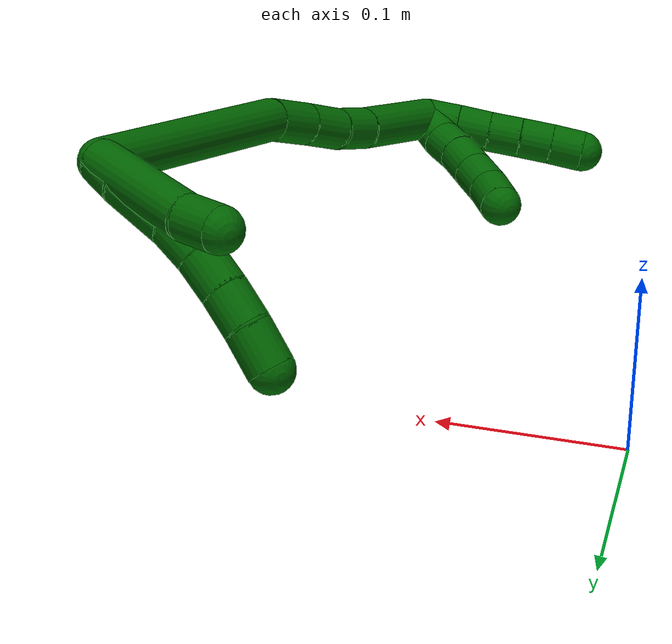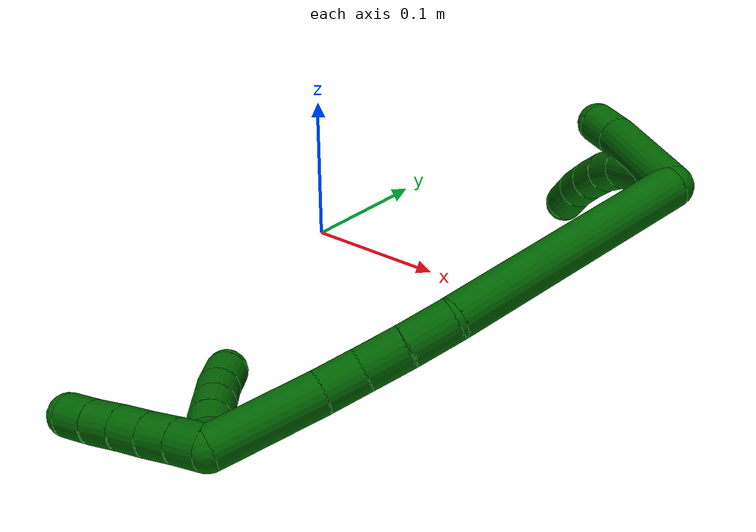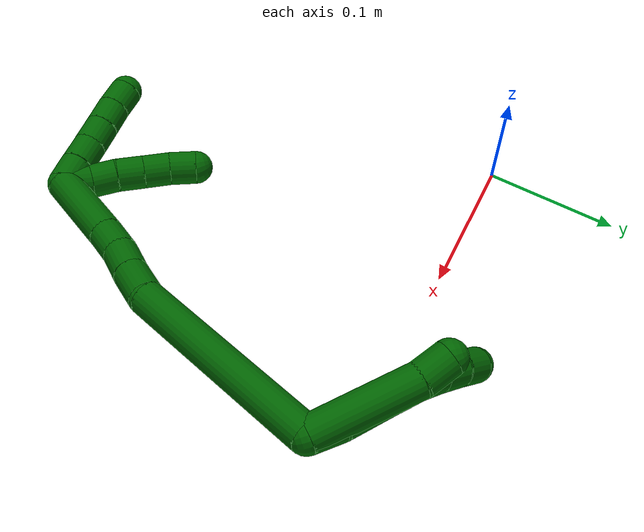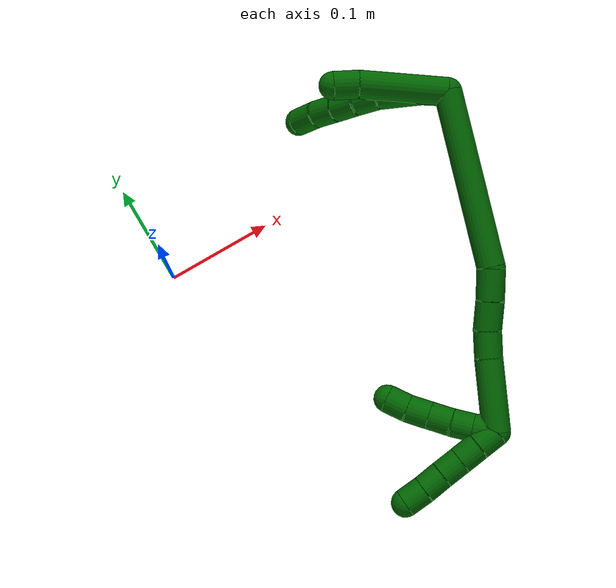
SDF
<sdf version="1.7">
 <world name="default">
  <model name="6">
   <static>0</static>
   <link name="6">
    <collision name="collision-cylinder-e_1_2_8">
     <pose>0.002192 -0.001929 -0.010778 2.96446 0.197608 1.68062</pose>
     <geometry><cylinder><radius>0.0125</radius><length>0.022332</length></cylinder></geometry>
     <surface>
      <friction><ode><mu>1.16</mu><mu2>1.16</mu2><slip1>0</slip1><slip2>0</slip2></ode></friction>
      <contact><ode><kp>1e+06</kp><kd>1</kd><max_vel>0</max_vel><min_depth>0.001</min_depth></ode></contact>
     </surface>
    </collision>
    <visual name="visual-cylinder-e_1_2_8">
     <pose>0.002192 -0.001929 -0.010778 2.96446 0.197608 1.68062</pose>
     <geometry><cylinder><radius>0.0125</radius><length>0.022332</length></cylinder></geometry>
     <material><ambient>0 0.392157 0.003922 1</ambient></material>
    </visual>
    <collision name="collision-cylinder-e_2_8_9">
     <pose>0.008478 -0.010081 -0.039435 2.80667 0.212961 1.12764</pose>
     <geometry><cylinder><radius>0.0125</radius><length>0.038738</length></cylinder></geometry>
     <surface>
      <friction><ode><mu>1.16</mu><mu2>1.16</mu2><slip1>0</slip1><slip2>0</slip2></ode></friction>
      <contact><ode><kp>1e+06</kp><kd>1</kd><max_vel>0</max_vel><min_depth>0.001</min_depth></ode></contact>
     </surface>
    </collision>
    <visual name="visual-cylinder-e_2_8_9">
     <pose>0.008478 -0.010081 -0.039435 2.80667 0.212961 1.12764</pose>
     <geometry><cylinder><radius>0.0125</radius><length>0.038738</length></cylinder></geometry>
     <material><ambient>0 0.392157 0.003922 1</ambient></material>
    </visual>
    <collision name="collision-cylinder-e_3_9_10">
     <pose>0.01704 -0.020843 -0.06595 2.65767 0.42945 1.44744</pose>
     <geometry><cylinder><radius>0.0125</radius><length>0.021461</length></cylinder></geometry>
     <surface>
      <friction><ode><mu>1.16</mu><mu2>1.16</mu2><slip1>0</slip1><slip2>0</slip2></ode></friction>
      <contact><ode><kp>1e+06</kp><kd>1</kd><max_vel>0</max_vel><min_depth>0.001</min_depth></ode></contact>
     </surface>
    </collision>
    <visual name="visual-cylinder-e_3_9_10">
     <pose>0.01704 -0.020843 -0.06595 2.65767 0.42945 1.44744</pose>
     <geometry><cylinder><radius>0.0125</radius><length>0.021461</length></cylinder></geometry>
     <material><ambient>0 0.392157 0.003922 1</ambient></material>
    </visual>
    <collision name="collision-cylinder-e_4_10_11">
     <pose>0.027418 -0.029813 -0.082763 2.64501 0.566129 1.70781</pose>
     <geometry><cylinder><radius>0.0125</radius><length>0.022039</length></cylinder></geometry>
     <surface>
      <friction><ode><mu>1.16</mu><mu2>1.16</mu2><slip1>0</slip1><slip2>0</slip2></ode></friction>
      <contact><ode><kp>1e+06</kp><kd>1</kd><max_vel>0</max_vel><min_depth>0.001</min_depth></ode></contact>
     </surface>
    </collision>
    <visual name="visual-cylinder-e_4_10_11">
     <pose>0.027418 -0.029813 -0.082763 2.64501 0.566129 1.70781</pose>
     <geometry><cylinder><radius>0.0125</radius><length>0.022039</length></cylinder></geometry>
     <material><ambient>0 0.392157 0.003922 1</ambient></material>
    </visual>
    <collision name="collision-cylinder-e_5_11_12">
     <pose>0.039621 -0.038295 -0.098774 2.66436 0.619707 1.84215</pose>
     <geometry><cylinder><radius>0.0125</radius><length>0.021668</length></cylinder></geometry>
     <surface>
      <friction><ode><mu>1.16</mu><mu2>1.16</mu2><slip1>0</slip1><slip2>0</slip2></ode></friction>
      <contact><ode><kp>1e+06</kp><kd>1</kd><max_vel>0</max_vel><min_depth>0.001</min_depth></ode></contact>
     </surface>
    </collision>
    <visual name="visual-cylinder-e_5_11_12">
     <pose>0.039621 -0.038295 -0.098774 2.66436 0.619707 1.84215</pose>
     <geometry><cylinder><radius>0.0125</radius><length>0.021668</length></cylinder></geometry>
     <material><ambient>0 0.392157 0.003922 1</ambient></material>
    </visual>
    <collision name="collision-cylinder-e_6_12_6">
     <pose>0.053837 -0.047161 -0.114036 2.56644 0.730117 1.82436</pose>
     <geometry><cylinder><radius>0.0125</radius><length>0.023761</length></cylinder></geometry>
     <surface>
      <friction><ode><mu>1.16</mu><mu2>1.16</mu2><slip1>0</slip1><slip2>0</slip2></ode></friction>
      <contact><ode><kp>1e+06</kp><kd>1</kd><max_vel>0</max_vel><min_depth>0.001</min_depth></ode></contact>
     </surface>
    </collision>
    <visual name="visual-cylinder-e_6_12_6">
     <pose>0.053837 -0.047161 -0.114036 2.56644 0.730117 1.82436</pose>
     <geometry><cylinder><radius>0.0125</radius><length>0.023761</length></cylinder></geometry>
     <material><ambient>0 0.392157 0.003922 1</ambient></material>
    </visual>
    <collision name="collision-cylinder-e_1_2_13">
     <pose>0.001005 -0.006217 -0.038037 2.97958 0.026081 0.31856</pose>
     <geometry><cylinder><radius>0.0125</radius><length>0.077109</length></cylinder></geometry>
     <surface>
      <friction><ode><mu>1.16</mu><mu2>1.16</mu2><slip1>0</slip1><slip2>0</slip2></ode></friction>
      <contact><ode><kp>1e+06</kp><kd>1</kd><max_vel>0</max_vel><min_depth>0.001</min_depth></ode></contact>
     </surface>
    </collision>
    <visual name="visual-cylinder-e_1_2_13">
     <pose>0.001005 -0.006217 -0.038037 2.97958 0.026081 0.31856</pose>
     <geometry><cylinder><radius>0.0125</radius><length>0.077109</length></cylinder></geometry>
     <material><ambient>0 0.392157 0.003922 1</ambient></material>
    </visual>
    <collision name="collision-cylinder-e_2_13_5">
     <pose>0.000959 -0.015915 -0.086926 2.83122 -0.091989 -0.572278</pose>
     <geometry><cylinder><radius>0.0125</radius><length>0.022891</length></cylinder></geometry>
     <surface>
      <friction><ode><mu>1.16</mu><mu2>1.16</mu2><slip1>0</slip1><slip2>0</slip2></ode></friction>
      <contact><ode><kp>1e+06</kp><kd>1</kd><max_vel>0</max_vel><min_depth>0.001</min_depth></ode></contact>
     </surface>
    </collision>
    <visual name="visual-cylinder-e_2_13_5">
     <pose>0.000959 -0.015915 -0.086926 2.83122 -0.091989 -0.572278</pose>
     <geometry><cylinder><radius>0.0125</radius><length>0.022891</length></cylinder></geometry>
     <material><ambient>0 0.392157 0.003922 1</ambient></material>
    </visual>
    <collision name="collision-cylinder-e_1_2_14">
     <pose>-0.00672 -0.068985 0.036414 1.08512 -0.085939 -0.051834</pose>
     <geometry><cylinder><radius>0.0125</radius><length>0.15659</length></cylinder></geometry>
     <surface>
      <friction><ode><mu>1.16</mu><mu2>1.16</mu2><slip1>0</slip1><slip2>0</slip2></ode></friction>
      <contact><ode><kp>1e+06</kp><kd>1</kd><max_vel>0</max_vel><min_depth>0.001</min_depth></ode></contact>
     </surface>
    </collision>
    <visual name="visual-cylinder-e_1_2_14">
     <pose>-0.00672 -0.068985 0.036414 1.08512 -0.085939 -0.051834</pose>
     <geometry><cylinder><radius>0.0125</radius><length>0.15659</length></cylinder></geometry>
     <material><ambient>0 0.392157 0.003922 1</ambient></material>
    </visual>
    <collision name="collision-cylinder-e_2_14_15">
     <pose>-0.012488 -0.151863 0.076179 1.33411 0.066571 0.05243</pose>
     <geometry><cylinder><radius>0.0125</radius><length>0.028644</length></cylinder></geometry>
     <surface>
      <friction><ode><mu>1.16</mu><mu2>1.16</mu2><slip1>0</slip1><slip2>0</slip2></ode></friction>
      <contact><ode><kp>1e+06</kp><kd>1</kd><max_vel>0</max_vel><min_depth>0.001</min_depth></ode></contact>
     </surface>
    </collision>
    <visual name="visual-cylinder-e_2_14_15">
     <pose>-0.012488 -0.151863 0.076179 1.33411 0.066571 0.05243</pose>
     <geometry><cylinder><radius>0.0125</radius><length>0.028644</length></cylinder></geometry>
     <material><ambient>0 0.392157 0.003922 1</ambient></material>
    </visual>
    <collision name="collision-cylinder-e_3_15_16">
     <pose>-0.010522 -0.178591 0.081797 1.396 0.077561 0.065074</pose>
     <geometry><cylinder><radius>0.0125</radius><length>0.026148</length></cylinder></geometry>
     <surface>
      <friction><ode><mu>1.16</mu><mu2>1.16</mu2><slip1>0</slip1><slip2>0</slip2></ode></friction>
      <contact><ode><kp>1e+06</kp><kd>1</kd><max_vel>0</max_vel><min_depth>0.001</min_depth></ode></contact>
     </surface>
    </collision>
    <visual name="visual-cylinder-e_3_15_16">
     <pose>-0.010522 -0.178591 0.081797 1.396 0.077561 0.065074</pose>
     <geometry><cylinder><radius>0.0125</radius><length>0.026148</length></cylinder></geometry>
     <material><ambient>0 0.392157 0.003922 1</ambient></material>
    </visual>
    <collision name="collision-cylinder-e_4_16_17">
     <pose>-0.00971 -0.203061 0.087657 1.27121 -0.01649 -0.012166</pose>
     <geometry><cylinder><radius>0.0125</radius><length>0.024355</length></cylinder></geometry>
     <surface>
      <friction><ode><mu>1.16</mu><mu2>1.16</mu2><slip1>0</slip1><slip2>0</slip2></ode></friction>
      <contact><ode><kp>1e+06</kp><kd>1</kd><max_vel>0</max_vel><min_depth>0.001</min_depth></ode></contact>
     </surface>
    </collision>
    <visual name="visual-cylinder-e_4_16_17">
     <pose>-0.00971 -0.203061 0.087657 1.27121 -0.01649 -0.012166</pose>
     <geometry><cylinder><radius>0.0125</radius><length>0.024355</length></cylinder></geometry>
     <material><ambient>0 0.392157 0.003922 1</ambient></material>
    </visual>
    <collision name="collision-cylinder-e_5_17_1">
     <pose>-0.012654 -0.244782 0.102187 1.22218 -0.085488 -0.059906</pose>
     <geometry><cylinder><radius>0.0125</radius><length>0.064262</length></cylinder></geometry>
     <surface>
      <friction><ode><mu>1.16</mu><mu2>1.16</mu2><slip1>0</slip1><slip2>0</slip2></ode></friction>
      <contact><ode><kp>1e+06</kp><kd>1</kd><max_vel>0</max_vel><min_depth>0.001</min_depth></ode></contact>
     </surface>
    </collision>
    <visual name="visual-cylinder-e_5_17_1">
     <pose>-0.012654 -0.244782 0.102187 1.22218 -0.085488 -0.059906</pose>
     <geometry><cylinder><radius>0.0125</radius><length>0.064262</length></cylinder></geometry>
     <material><ambient>0 0.392157 0.003922 1</ambient></material>
    </visual>
    <collision name="collision-cylinder-e_1_1_18">
     <pose>-0.011538 -0.276222 0.103997 2.99456 0.396253 2.43838</pose>
     <geometry><cylinder><radius>0.0125</radius><length>0.02</length></cylinder></geometry>
     <surface>
      <friction><ode><mu>1.16</mu><mu2>1.16</mu2><slip1>0</slip1><slip2>0</slip2></ode></friction>
      <contact><ode><kp>1e+06</kp><kd>1</kd><max_vel>0</max_vel><min_depth>0.001</min_depth></ode></contact>
     </surface>
    </collision>
    <visual name="visual-cylinder-e_1_1_18">
     <pose>-0.011538 -0.276222 0.103997 2.99456 0.396253 2.43838</pose>
     <geometry><cylinder><radius>0.0125</radius><length>0.02</length></cylinder></geometry>
     <material><ambient>0 0.392157 0.003922 1</ambient></material>
    </visual>
    <collision name="collision-cylinder-e_2_18_19">
     <pose>-0.006306 -0.277849 0.08497 3.11375 0.137691 2.74321</pose>
     <geometry><cylinder><radius>0.0125</radius><length>0.02</length></cylinder></geometry>
     <surface>
      <friction><ode><mu>1.16</mu><mu2>1.16</mu2><slip1>0</slip1><slip2>0</slip2></ode></friction>
      <contact><ode><kp>1e+06</kp><kd>1</kd><max_vel>0</max_vel><min_depth>0.001</min_depth></ode></contact>
     </surface>
    </collision>
    <visual name="visual-cylinder-e_2_18_19">
     <pose>-0.006306 -0.277849 0.08497 3.11375 0.137691 2.74321</pose>
     <geometry><cylinder><radius>0.0125</radius><length>0.02</length></cylinder></geometry>
     <material><ambient>0 0.392157 0.003922 1</ambient></material>
    </visual>
    <collision name="collision-cylinder-e_3_19_20">
     <pose>-0.002616 -0.277865 0.065344 -3.1149 0.233838 -2.91533</pose>
     <geometry><cylinder><radius>0.0125</radius><length>0.02</length></cylinder></geometry>
     <surface>
      <friction><ode><mu>1.16</mu><mu2>1.16</mu2><slip1>0</slip1><slip2>0</slip2></ode></friction>
      <contact><ode><kp>1e+06</kp><kd>1</kd><max_vel>0</max_vel><min_depth>0.001</min_depth></ode></contact>
     </surface>
    </collision>
    <visual name="visual-cylinder-e_3_19_20">
     <pose>-0.002616 -0.277865 0.065344 -3.1149 0.233838 -2.91533</pose>
     <geometry><cylinder><radius>0.0125</radius><length>0.02</length></cylinder></geometry>
     <material><ambient>0 0.392157 0.003922 1</ambient></material>
    </visual>
    <collision name="collision-cylinder-e_4_20_21">
     <pose>0.001896 -0.27729 0.045868 -3.1093 0.221273 -2.85286</pose>
     <geometry><cylinder><radius>0.0125</radius><length>0.02</length></cylinder></geometry>
     <surface>
      <friction><ode><mu>1.16</mu><mu2>1.16</mu2><slip1>0</slip1><slip2>0</slip2></ode></friction>
      <contact><ode><kp>1e+06</kp><kd>1</kd><max_vel>0</max_vel><min_depth>0.001</min_depth></ode></contact>
     </surface>
    </collision>
    <visual name="visual-cylinder-e_4_20_21">
     <pose>0.001896 -0.27729 0.045868 -3.1093 0.221273 -2.85286</pose>
     <geometry><cylinder><radius>0.0125</radius><length>0.02</length></cylinder></geometry>
     <material><ambient>0 0.392157 0.003922 1</ambient></material>
    </visual>
    <collision name="collision-cylinder-e_5_21_4">
     <pose>0.006183 -0.275271 0.026488 -2.96639 0.210843 -1.75607</pose>
     <geometry><cylinder><radius>0.0125</radius><length>0.02</length></cylinder></geometry>
     <surface>
      <friction><ode><mu>1.16</mu><mu2>1.16</mu2><slip1>0</slip1><slip2>0</slip2></ode></friction>
      <contact><ode><kp>1e+06</kp><kd>1</kd><max_vel>0</max_vel><min_depth>0.001</min_depth></ode></contact>
     </surface>
    </collision>
    <visual name="visual-cylinder-e_5_21_4">
     <pose>0.006183 -0.275271 0.026488 -2.96639 0.210843 -1.75607</pose>
     <geometry><cylinder><radius>0.0125</radius><length>0.02</length></cylinder></geometry>
     <material><ambient>0 0.392157 0.003922 1</ambient></material>
    </visual>
    <collision name="collision-cylinder-e_1_1_22">
     <pose>-0.016137 -0.282699 0.106944 2.23891 -0.07396 -0.15236</pose>
     <geometry><cylinder><radius>0.0125</radius><length>0.02</length></cylinder></geometry>
     <surface>
      <friction><ode><mu>1.16</mu><mu2>1.16</mu2><slip1>0</slip1><slip2>0</slip2></ode></friction>
      <contact><ode><kp>1e+06</kp><kd>1</kd><max_vel>0</max_vel><min_depth>0.001</min_depth></ode></contact>
     </surface>
    </collision>
    <visual name="visual-cylinder-e_1_1_22">
     <pose>-0.016137 -0.282699 0.106944 2.23891 -0.07396 -0.15236</pose>
     <geometry><cylinder><radius>0.0125</radius><length>0.02</length></cylinder></geometry>
     <material><ambient>0 0.392157 0.003922 1</ambient></material>
    </visual>
    <collision name="collision-cylinder-e_2_22_23">
     <pose>-0.0173 -0.298464 0.094698 2.22355 -0.042473 -0.085898</pose>
     <geometry><cylinder><radius>0.0125</radius><length>0.02</length></cylinder></geometry>
     <surface>
      <friction><ode><mu>1.16</mu><mu2>1.16</mu2><slip1>0</slip1><slip2>0</slip2></ode></friction>
      <contact><ode><kp>1e+06</kp><kd>1</kd><max_vel>0</max_vel><min_depth>0.001</min_depth></ode></contact>
     </surface>
    </collision>
    <visual name="visual-cylinder-e_2_22_23">
     <pose>-0.0173 -0.298464 0.094698 2.22355 -0.042473 -0.085898</pose>
     <geometry><cylinder><radius>0.0125</radius><length>0.02</length></cylinder></geometry>
     <material><ambient>0 0.392157 0.003922 1</ambient></material>
    </visual>
    <collision name="collision-cylinder-e_3_23_24">
     <pose>-0.018471 -0.314242 0.082469 2.23675 -0.074748 -0.153558</pose>
     <geometry><cylinder><radius>0.0125</radius><length>0.02</length></cylinder></geometry>
     <surface>
      <friction><ode><mu>1.16</mu><mu2>1.16</mu2><slip1>0</slip1><slip2>0</slip2></ode></friction>
      <contact><ode><kp>1e+06</kp><kd>1</kd><max_vel>0</max_vel><min_depth>0.001</min_depth></ode></contact>
     </surface>
    </collision>
    <visual name="visual-cylinder-e_3_23_24">
     <pose>-0.018471 -0.314242 0.082469 2.23675 -0.074748 -0.153558</pose>
     <geometry><cylinder><radius>0.0125</radius><length>0.02</length></cylinder></geometry>
     <material><ambient>0 0.392157 0.003922 1</ambient></material>
    </visual>
    <collision name="collision-cylinder-e_4_24_25">
     <pose>-0.019803 -0.330098 0.070355 2.20967 -0.05847 -0.116169</pose>
     <geometry><cylinder><radius>0.0125</radius><length>0.02</length></cylinder></geometry>
     <surface>
      <friction><ode><mu>1.16</mu><mu2>1.16</mu2><slip1>0</slip1><slip2>0</slip2></ode></friction>
      <contact><ode><kp>1e+06</kp><kd>1</kd><max_vel>0</max_vel><min_depth>0.001</min_depth></ode></contact>
     </surface>
    </collision>
    <visual name="visual-cylinder-e_4_24_25">
     <pose>-0.019803 -0.330098 0.070355 2.20967 -0.05847 -0.116169</pose>
     <geometry><cylinder><radius>0.0125</radius><length>0.02</length></cylinder></geometry>
     <material><ambient>0 0.392157 0.003922 1</ambient></material>
    </visual>
    <collision name="collision-cylinder-e_5_25_3">
     <pose>-0.02082 -0.345716 0.057924 2.27642 -0.043299 -0.093716</pose>
     <geometry><cylinder><radius>0.0125</radius><length>0.02</length></cylinder></geometry>
     <surface>
      <friction><ode><mu>1.16</mu><mu2>1.16</mu2><slip1>0</slip1><slip2>0</slip2></ode></friction>
      <contact><ode><kp>1e+06</kp><kd>1</kd><max_vel>0</max_vel><min_depth>0.001</min_depth></ode></contact>
     </surface>
    </collision>
    <visual name="visual-cylinder-e_5_25_3">
     <pose>-0.02082 -0.345716 0.057924 2.27642 -0.043299 -0.093716</pose>
     <geometry><cylinder><radius>0.0125</radius><length>0.02</length></cylinder></geometry>
     <material><ambient>0 0.392157 0.003922 1</ambient></material>
    </visual>
    <collision name="collision-sphere-3">
     <pose>-0.021253 -0.353321 0.051445 0 -0 0</pose>
     <geometry><sphere><radius>0.0125</radius></sphere></geometry>
     <surface>
      <friction><ode><mu>1.16</mu><mu2>1.16</mu2><slip1>0</slip1><slip2>0</slip2></ode></friction>
      <contact><ode><kp>1e+06</kp><kd>1</kd><max_vel>0</max_vel><min_depth>0.001</min_depth></ode></contact>
     </surface>
    </collision>
    <visual name="visual-sphere-3">
     <pose>-0.021253 -0.353321 0.051445 0 -0 0</pose>
     <geometry><sphere><radius>0.0125</radius></sphere></geometry>
     <material><ambient>0 0.392157 0.003922 1</ambient></material>
    </visual>
    <collision name="collision-sphere-25">
     <pose>-0.020387 -0.338112 0.064403 0 -0 0</pose>
     <geometry><sphere><radius>0.0125</radius></sphere></geometry>
     <surface>
      <friction><ode><mu>1.16</mu><mu2>1.16</mu2><slip1>0</slip1><slip2>0</slip2></ode></friction>
      <contact><ode><kp>1e+06</kp><kd>1</kd><max_vel>0</max_vel><min_depth>0.001</min_depth></ode></contact>
     </surface>
    </collision>
    <visual name="visual-sphere-25">
     <pose>-0.020387 -0.338112 0.064403 0 -0 0</pose>
     <geometry><sphere><radius>0.0125</radius></sphere></geometry>
     <material><ambient>0 0.392157 0.003922 1</ambient></material>
    </visual>
    <collision name="collision-sphere-24">
     <pose>-0.019218 -0.322084 0.076308 0 -0 0</pose>
     <geometry><sphere><radius>0.0125</radius></sphere></geometry>
     <surface>
      <friction><ode><mu>1.16</mu><mu2>1.16</mu2><slip1>0</slip1><slip2>0</slip2></ode></friction>
      <contact><ode><kp>1e+06</kp><kd>1</kd><max_vel>0</max_vel><min_depth>0.001</min_depth></ode></contact>
     </surface>
    </collision>
    <visual name="visual-sphere-24">
     <pose>-0.019218 -0.322084 0.076308 0 -0 0</pose>
     <geometry><sphere><radius>0.0125</radius></sphere></geometry>
     <material><ambient>0 0.392157 0.003922 1</ambient></material>
    </visual>
    <collision name="collision-sphere-23">
     <pose>-0.017725 -0.306401 0.08863 0 -0 0</pose>
     <geometry><sphere><radius>0.0125</radius></sphere></geometry>
     <surface>
      <friction><ode><mu>1.16</mu><mu2>1.16</mu2><slip1>0</slip1><slip2>0</slip2></ode></friction>
      <contact><ode><kp>1e+06</kp><kd>1</kd><max_vel>0</max_vel><min_depth>0.001</min_depth></ode></contact>
     </surface>
    </collision>
    <visual name="visual-sphere-23">
     <pose>-0.017725 -0.306401 0.08863 0 -0 0</pose>
     <geometry><sphere><radius>0.0125</radius></sphere></geometry>
     <material><ambient>0 0.392157 0.003922 1</ambient></material>
    </visual>
    <collision name="collision-sphere-22">
     <pose>-0.016875 -0.290527 0.100766 0 -0 0</pose>
     <geometry><sphere><radius>0.0125</radius></sphere></geometry>
     <surface>
      <friction><ode><mu>1.16</mu><mu2>1.16</mu2><slip1>0</slip1><slip2>0</slip2></ode></friction>
      <contact><ode><kp>1e+06</kp><kd>1</kd><max_vel>0</max_vel><min_depth>0.001</min_depth></ode></contact>
     </surface>
    </collision>
    <visual name="visual-sphere-22">
     <pose>-0.016875 -0.290527 0.100766 0 -0 0</pose>
     <geometry><sphere><radius>0.0125</radius></sphere></geometry>
     <material><ambient>0 0.392157 0.003922 1</ambient></material>
    </visual>
    <collision name="collision-sphere-4">
     <pose>0.008276 -0.273566 0.01686 0 -0 0</pose>
     <geometry><sphere><radius>0.0125</radius></sphere></geometry>
     <surface>
      <friction><ode><mu>1.16</mu><mu2>1.16</mu2><slip1>0</slip1><slip2>0</slip2></ode></friction>
      <contact><ode><kp>1e+06</kp><kd>1</kd><max_vel>0</max_vel><min_depth>0.001</min_depth></ode></contact>
     </surface>
    </collision>
    <visual name="visual-sphere-4">
     <pose>0.008276 -0.273566 0.01686 0 -0 0</pose>
     <geometry><sphere><radius>0.0125</radius></sphere></geometry>
     <material><ambient>0 0.392157 0.003922 1</ambient></material>
    </visual>
    <collision name="collision-sphere-21">
     <pose>0.004091 -0.276975 0.036117 0 -0 0</pose>
     <geometry><sphere><radius>0.0125</radius></sphere></geometry>
     <surface>
      <friction><ode><mu>1.16</mu><mu2>1.16</mu2><slip1>0</slip1><slip2>0</slip2></ode></friction>
      <contact><ode><kp>1e+06</kp><kd>1</kd><max_vel>0</max_vel><min_depth>0.001</min_depth></ode></contact>
     </surface>
    </collision>
    <visual name="visual-sphere-21">
     <pose>0.004091 -0.276975 0.036117 0 -0 0</pose>
     <geometry><sphere><radius>0.0125</radius></sphere></geometry>
     <material><ambient>0 0.392157 0.003922 1</ambient></material>
    </visual>
    <collision name="collision-sphere-20">
     <pose>-0.000299 -0.277605 0.055619 0 -0 0</pose>
     <geometry><sphere><radius>0.0125</radius></sphere></geometry>
     <surface>
      <friction><ode><mu>1.16</mu><mu2>1.16</mu2><slip1>0</slip1><slip2>0</slip2></ode></friction>
      <contact><ode><kp>1e+06</kp><kd>1</kd><max_vel>0</max_vel><min_depth>0.001</min_depth></ode></contact>
     </surface>
    </collision>
    <visual name="visual-sphere-20">
     <pose>-0.000299 -0.277605 0.055619 0 -0 0</pose>
     <geometry><sphere><radius>0.0125</radius></sphere></geometry>
     <material><ambient>0 0.392157 0.003922 1</ambient></material>
    </visual>
    <collision name="collision-sphere-12">
     <pose>0.045913 -0.042346 -0.106608 0 -0 0</pose>
     <geometry><sphere><radius>0.0125</radius></sphere></geometry>
     <surface>
      <friction><ode><mu>1.16</mu><mu2>1.16</mu2><slip1>0</slip1><slip2>0</slip2></ode></friction>
      <contact><ode><kp>1e+06</kp><kd>1</kd><max_vel>0</max_vel><min_depth>0.001</min_depth></ode></contact>
     </surface>
    </collision>
    <visual name="visual-sphere-12">
     <pose>0.045913 -0.042346 -0.106608 0 -0 0</pose>
     <geometry><sphere><radius>0.0125</radius></sphere></geometry>
     <material><ambient>0 0.392157 0.003922 1</ambient></material>
    </visual>
    <collision name="collision-sphere-11">
     <pose>0.033329 -0.034244 -0.09094 0 -0 0</pose>
     <geometry><sphere><radius>0.0125</radius></sphere></geometry>
     <surface>
      <friction><ode><mu>1.16</mu><mu2>1.16</mu2><slip1>0</slip1><slip2>0</slip2></ode></friction>
      <contact><ode><kp>1e+06</kp><kd>1</kd><max_vel>0</max_vel><min_depth>0.001</min_depth></ode></contact>
     </surface>
    </collision>
    <visual name="visual-sphere-11">
     <pose>0.033329 -0.034244 -0.09094 0 -0 0</pose>
     <geometry><sphere><radius>0.0125</radius></sphere></geometry>
     <material><ambient>0 0.392157 0.003922 1</ambient></material>
    </visual>
    <collision name="collision-sphere-10">
     <pose>0.021508 -0.025382 -0.074586 0 -0 0</pose>
     <geometry><sphere><radius>0.0125</radius></sphere></geometry>
     <surface>
      <friction><ode><mu>1.16</mu><mu2>1.16</mu2><slip1>0</slip1><slip2>0</slip2></ode></friction>
      <contact><ode><kp>1e+06</kp><kd>1</kd><max_vel>0</max_vel><min_depth>0.001</min_depth></ode></contact>
     </surface>
    </collision>
    <visual name="visual-sphere-10">
     <pose>0.021508 -0.025382 -0.074586 0 -0 0</pose>
     <geometry><sphere><radius>0.0125</radius></sphere></geometry>
     <material><ambient>0 0.392157 0.003922 1</ambient></material>
    </visual>
    <collision name="collision-sphere-9">
     <pose>0.012572 -0.016304 -0.057314 0 -0 0</pose>
     <geometry><sphere><radius>0.0125</radius></sphere></geometry>
     <surface>
      <friction><ode><mu>1.16</mu><mu2>1.16</mu2><slip1>0</slip1><slip2>0</slip2></ode></friction>
      <contact><ode><kp>1e+06</kp><kd>1</kd><max_vel>0</max_vel><min_depth>0.001</min_depth></ode></contact>
     </surface>
    </collision>
    <visual name="visual-sphere-9">
     <pose>0.012572 -0.016304 -0.057314 0 -0 0</pose>
     <geometry><sphere><radius>0.0125</radius></sphere></geometry>
     <material><ambient>0 0.392157 0.003922 1</ambient></material>
    </visual>
    <collision name="collision-sphere-2">
     <geometry><sphere><radius>0.0125</radius></sphere></geometry>
     <surface>
      <friction><ode><mu>1.16</mu><mu2>1.16</mu2><slip1>0</slip1><slip2>0</slip2></ode></friction>
      <contact><ode><kp>1e+06</kp><kd>1</kd><max_vel>0</max_vel><min_depth>0.001</min_depth></ode></contact>
     </surface>
    </collision>
    <visual name="visual-sphere-2">
     <geometry><sphere><radius>0.0125</radius></sphere></geometry>
     <material><ambient>0 0.392157 0.003922 1</ambient></material>
    </visual>
    <collision name="collision-sphere-19">
     <pose>-0.004933 -0.278124 0.075068 0 -0 0</pose>
     <geometry><sphere><radius>0.0125</radius></sphere></geometry>
     <surface>
      <friction><ode><mu>1.16</mu><mu2>1.16</mu2><slip1>0</slip1><slip2>0</slip2></ode></friction>
      <contact><ode><kp>1e+06</kp><kd>1</kd><max_vel>0</max_vel><min_depth>0.001</min_depth></ode></contact>
     </surface>
    </collision>
    <visual name="visual-sphere-19">
     <pose>-0.004933 -0.278124 0.075068 0 -0 0</pose>
     <geometry><sphere><radius>0.0125</radius></sphere></geometry>
     <material><ambient>0 0.392157 0.003922 1</ambient></material>
    </visual>
    <collision name="collision-sphere-8">
     <pose>0.004384 -0.003859 -0.021555 0 -0 0</pose>
     <geometry><sphere><radius>0.0125</radius></sphere></geometry>
     <surface>
      <friction><ode><mu>1.16</mu><mu2>1.16</mu2><slip1>0</slip1><slip2>0</slip2></ode></friction>
      <contact><ode><kp>1e+06</kp><kd>1</kd><max_vel>0</max_vel><min_depth>0.001</min_depth></ode></contact>
     </surface>
    </collision>
    <visual name="visual-sphere-8">
     <pose>0.004384 -0.003859 -0.021555 0 -0 0</pose>
     <geometry><sphere><radius>0.0125</radius></sphere></geometry>
     <material><ambient>0 0.392157 0.003922 1</ambient></material>
    </visual>
    <collision name="collision-sphere-6">
     <pose>0.061761 -0.051976 -0.121464 0 -0 0</pose>
     <geometry><sphere><radius>0.0125</radius></sphere></geometry>
     <surface>
      <friction><ode><mu>1.16</mu><mu2>1.16</mu2><slip1>0</slip1><slip2>0</slip2></ode></friction>
      <contact><ode><kp>1e+06</kp><kd>1</kd><max_vel>0</max_vel><min_depth>0.001</min_depth></ode></contact>
     </surface>
    </collision>
    <visual name="visual-sphere-6">
     <pose>0.061761 -0.051976 -0.121464 0 -0 0</pose>
     <geometry><sphere><radius>0.0125</radius></sphere></geometry>
     <material><ambient>0 0.392157 0.003922 1</ambient></material>
    </visual>
    <collision name="collision-sphere-13">
     <pose>0.002011 -0.012434 -0.076073 0 -0 0</pose>
     <geometry><sphere><radius>0.0125</radius></sphere></geometry>
     <surface>
      <friction><ode><mu>1.16</mu><mu2>1.16</mu2><slip1>0</slip1><slip2>0</slip2></ode></friction>
      <contact><ode><kp>1e+06</kp><kd>1</kd><max_vel>0</max_vel><min_depth>0.001</min_depth></ode></contact>
     </surface>
    </collision>
    <visual name="visual-sphere-13">
     <pose>0.002011 -0.012434 -0.076073 0 -0 0</pose>
     <geometry><sphere><radius>0.0125</radius></sphere></geometry>
     <material><ambient>0 0.392157 0.003922 1</ambient></material>
    </visual>
    <collision name="collision-sphere-5">
     <pose>-9.2e-05 -0.019395 -0.097778 0 -0 0</pose>
     <geometry><sphere><radius>0.0125</radius></sphere></geometry>
     <surface>
      <friction><ode><mu>1.16</mu><mu2>1.16</mu2><slip1>0</slip1><slip2>0</slip2></ode></friction>
      <contact><ode><kp>1e+06</kp><kd>1</kd><max_vel>0</max_vel><min_depth>0.001</min_depth></ode></contact>
     </surface>
    </collision>
    <visual name="visual-sphere-5">
     <pose>-9.2e-05 -0.019395 -0.097778 0 -0 0</pose>
     <geometry><sphere><radius>0.0125</radius></sphere></geometry>
     <material><ambient>0 0.392157 0.003922 1</ambient></material>
    </visual>
    <collision name="collision-sphere-14">
     <pose>-0.013441 -0.137971 0.072828 0 -0 0</pose>
     <geometry><sphere><radius>0.0125</radius></sphere></geometry>
     <surface>
      <friction><ode><mu>1.16</mu><mu2>1.16</mu2><slip1>0</slip1><slip2>0</slip2></ode></friction>
      <contact><ode><kp>1e+06</kp><kd>1</kd><max_vel>0</max_vel><min_depth>0.001</min_depth></ode></contact>
     </surface>
    </collision>
    <visual name="visual-sphere-14">
     <pose>-0.013441 -0.137971 0.072828 0 -0 0</pose>
     <geometry><sphere><radius>0.0125</radius></sphere></geometry>
     <material><ambient>0 0.392157 0.003922 1</ambient></material>
    </visual>
    <collision name="collision-sphere-15">
     <pose>-0.011535 -0.165755 0.07953 0 -0 0</pose>
     <geometry><sphere><radius>0.0125</radius></sphere></geometry>
     <surface>
      <friction><ode><mu>1.16</mu><mu2>1.16</mu2><slip1>0</slip1><slip2>0</slip2></ode></friction>
      <contact><ode><kp>1e+06</kp><kd>1</kd><max_vel>0</max_vel><min_depth>0.001</min_depth></ode></contact>
     </surface>
    </collision>
    <visual name="visual-sphere-15">
     <pose>-0.011535 -0.165755 0.07953 0 -0 0</pose>
     <geometry><sphere><radius>0.0125</radius></sphere></geometry>
     <material><ambient>0 0.392157 0.003922 1</ambient></material>
    </visual>
    <collision name="collision-sphere-16">
     <pose>-0.009509 -0.191427 0.084064 0 -0 0</pose>
     <geometry><sphere><radius>0.0125</radius></sphere></geometry>
     <surface>
      <friction><ode><mu>1.16</mu><mu2>1.16</mu2><slip1>0</slip1><slip2>0</slip2></ode></friction>
      <contact><ode><kp>1e+06</kp><kd>1</kd><max_vel>0</max_vel><min_depth>0.001</min_depth></ode></contact>
     </surface>
    </collision>
    <visual name="visual-sphere-16">
     <pose>-0.009509 -0.191427 0.084064 0 -0 0</pose>
     <geometry><sphere><radius>0.0125</radius></sphere></geometry>
     <material><ambient>0 0.392157 0.003922 1</ambient></material>
    </visual>
    <collision name="collision-sphere-17">
     <pose>-0.009911 -0.214695 0.091251 0 -0 0</pose>
     <geometry><sphere><radius>0.0125</radius></sphere></geometry>
     <surface>
      <friction><ode><mu>1.16</mu><mu2>1.16</mu2><slip1>0</slip1><slip2>0</slip2></ode></friction>
      <contact><ode><kp>1e+06</kp><kd>1</kd><max_vel>0</max_vel><min_depth>0.001</min_depth></ode></contact>
     </surface>
    </collision>
    <visual name="visual-sphere-17">
     <pose>-0.009911 -0.214695 0.091251 0 -0 0</pose>
     <geometry><sphere><radius>0.0125</radius></sphere></geometry>
     <material><ambient>0 0.392157 0.003922 1</ambient></material>
    </visual>
    <collision name="collision-sphere-1">
     <pose>-0.015398 -0.27487 0.113122 0 -0 0</pose>
     <geometry><sphere><radius>0.0125</radius></sphere></geometry>
     <surface>
      <friction><ode><mu>1.16</mu><mu2>1.16</mu2><slip1>0</slip1><slip2>0</slip2></ode></friction>
      <contact><ode><kp>1e+06</kp><kd>1</kd><max_vel>0</max_vel><min_depth>0.001</min_depth></ode></contact>
     </surface>
    </collision>
    <visual name="visual-sphere-1">
     <pose>-0.015398 -0.27487 0.113122 0 -0 0</pose>
     <geometry><sphere><radius>0.0125</radius></sphere></geometry>
     <material><ambient>0 0.392157 0.003922 1</ambient></material>
    </visual>
    <collision name="collision-sphere-18">
     <pose>-0.007678 -0.277573 0.094871 0 -0 0</pose>
     <geometry><sphere><radius>0.0125</radius></sphere></geometry>
     <surface>
      <friction><ode><mu>1.16</mu><mu2>1.16</mu2><slip1>0</slip1><slip2>0</slip2></ode></friction>
      <contact><ode><kp>1e+06</kp><kd>1</kd><max_vel>0</max_vel><min_depth>0.001</min_depth></ode></contact>
     </surface>
    </collision>
    <visual name="visual-sphere-18">
     <pose>-0.007678 -0.277573 0.094871 0 -0 0</pose>
     <geometry><sphere><radius>0.0125</radius></sphere></geometry>
     <material><ambient>0 0.392157 0.003922 1</ambient></material>
    </visual>
    <inertial>
     <pose>-0.001665 -0.138593 0.024967 0 -0 0</pose>
     <mass>0.75</mass>
     <inertia>
      <ixx>0.000411</ixx>
      <ixy>0</ixy>
      <ixz>0</ixz>
      <iyy>9.8e-05</iyy>
      <iyz>0</iyz>
      <izz>0.000337</izz>
     </inertia>
    </inertial>
   </link>
   <pose>0.280905 -0.014808 0.11924 1.8043 1.22963 1.0101</pose>
  </model>
 </world>
</sdf>
